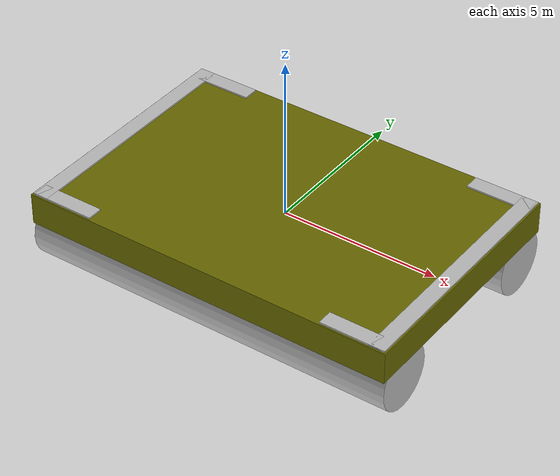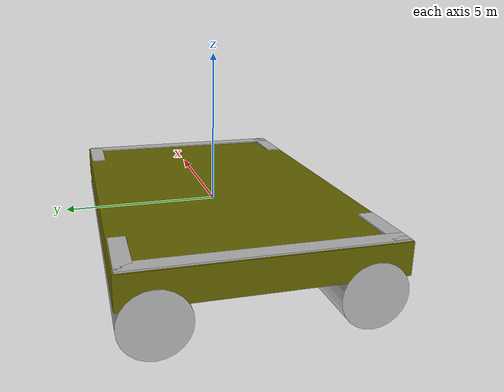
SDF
<?xml version='1.0'?>
<sdf version='1.4'>
  <model name="tug_boat">
    <pose>0 0 0 0 0 0</pose>
    <static>false</static>

    <!-- LINK -->
    <link name="body">
      <pose>0 0 0 0 0 0</pose>

      <collision name="body">
        <geometry>
          <box><size>12.0 8.0 1.0</size></box>
        </geometry>
      </collision>

      <visual name="body">
        <geometry>
          <box><size>12.0 8.0 1.0</size></box>
        </geometry>

        <material>
          <diffuse>0.4 0.4 0 1</diffuse>
        </material>
      </visual>

      <inertial>
        <mass> 1000 </mass>
      </inertial>
    </link>

    <link name="right_floater">
      <pose>0 -3 -1 0 1.57 0</pose>
      <collision name="right_floater">
        <geometry>
          <cylinder>
            <radius>1.0</radius>
            <length>12.0</length>
          </cylinder>
        </geometry>
      </collision>

      <visual name="right_floater">
        <geometry>
          <cylinder>
            <radius>1.0</radius>
            <length>12.0</length>
          </cylinder>
        </geometry>
      </visual>

      <inertial>
        <mass> 30 </mass>
      </inertial>

    </link>

    <link name="left_floater">
      <pose>0 3 -1 0 1.57 0</pose>
      <collision name="left_floater">
        <geometry>
          <cylinder>
            <radius>1.0</radius>
            <length>12.0</length>
          </cylinder>
        </geometry>
      </collision>

      <visual name="left_floater">
        <geometry>
          <cylinder>
            <radius>1.0</radius>
            <length>12.0</length>
          </cylinder>
        </geometry>
      </visual>
      <inertial>
        <mass> 30 </mass>
      </inertial>
    </link>

    <link name="left_line_1">
      <pose>4.9 -3.7 0.5 0 0 0</pose>

      <collision name="left_line_1">
        <geometry>
          <box><size>2 0.5 0.1</size></box>
        </geometry>
      </collision>

      <visual name="left_line_1">
        <geometry>
          <box><size>2 0.5 0.1</size></box>
        </geometry>
      </visual>
    </link>

    <link name="left_line_2">
      <pose>-4.9 -3.7 0.5 0 0 0</pose>

      <collision name="left_line_2">
        <geometry>
          <box><size>2 0.5 0.1</size></box>
        </geometry>
      </collision>

      <visual name="left_line_2">
        <geometry>
          <box><size>2 0.5 0.1</size></box>
        </geometry>
      </visual>
    </link>

    <link name="right_line_1">
      <pose>4.9 3.7 0.5 0 0 0</pose>

      <collision name="right_line_1">
        <geometry>
          <box><size>2 0.5 0.1</size></box>
        </geometry>
      </collision>

      <visual name="right_line_1">
        <geometry>
          <box><size>2 0.5 0.1</size></box>
        </geometry>
      </visual>
    </link>

    <link name="right_line_2">
      <pose>-4.9 3.7 0.5 0 0 0</pose>

      <collision name="right_line_2">
        <geometry>
          <box><size>2 0.5 0.1</size></box>
        </geometry>
      </collision>

      <visual name="right_line_2">
        <geometry>
          <box><size>2 0.5 0.1</size></box>
        </geometry>
      </visual>
    </link>

    <link name="front_line">
      <pose>5.7 0 0.5 0 0 0</pose>

      <collision name="front_line">
        <geometry>
          <box><size>0.5 7.9 0.1</size></box>
        </geometry>
      </collision>

      <visual name="front_line">
        <geometry>
          <box><size>0.5 7.9 0.1</size></box>
        </geometry>
      </visual>
    </link>

    <link name="back_line">
      <pose>-5.7 0 0.5 0 0 0</pose>

      <collision name="back_line">
        <geometry>
          <box><size>0.5 7.9 0.1</size></box>
        </geometry>
      </collision>

      <visual name="back_line">
        <geometry>
          <box><size>0.5 7.9 0.1</size></box>
        </geometry>
      </visual>
    </link>

    <!-- JOINT -->
    <joint name="body2right_floater" type="fixed">
      <pose>0 0 0 0 0 0</pose>
      <parent>body</parent>
      <child>right_floater</child>
    </joint>

    <joint name="body2left_floater" type="fixed">
      <pose>0 0 0 0 0 0</pose>
      <parent>body</parent>
      <child>left_floater</child>
    </joint>

    <joint name="body2left_line_1" type="fixed">
      <pose>0 0 0 0 0 0</pose>
      <parent>body</parent>
      <child>left_line_1</child>
    </joint>

    <joint name="body2left_line_2" type="fixed">
      <pose>0 0 0 0 0 0</pose>
      <parent>body</parent>
      <child>left_line_2</child>
    </joint>

    <joint name="body2right_line_1" type="fixed">
      <pose>0 0 0 0 0 0</pose>
      <parent>body</parent>
      <child>right_line_1</child>
    </joint>

    <joint name="body2right_line_2" type="fixed">
      <pose>0 0 0 0 0 0</pose>
      <parent>body</parent>
      <child>right_line_2</child>
    </joint>

    <joint name="body2front_line" type="fixed">
      <pose>0 0 0 0 0 0</pose>
      <parent>body</parent>
      <child>front_line</child>
    </joint>

    <joint name="body2back_line" type="fixed">
      <pose>0 0 0 0 0 0</pose>
      <parent>body</parent>
      <child>back_line</child>
    </joint>

    <!-- PLUGIN -->
    <plugin name="BuoyancyPlugin" filename="libbuoyancy_gazebo_plugin.so">
      <fluid_density>1000</fluid_density>
      <fluid_level>0.0</fluid_level>
      <fluid_drag>5.0</fluid_drag>
      <link>
        <name>body</name>
        <center_of_volume>5.5 0 1</center_of_volume>
        <area>0.63</area>
        <height>0.70</height>
      </link>
    </plugin>

    <plugin name="BuoyancyPlugin" filename="libbuoyancy_gazebo_plugin.so">
      <fluid_density>1000</fluid_density>
      <fluid_level>0.0</fluid_level>
      <fluid_drag>5.0</fluid_drag>
      <link>
        <name>body</name>
        <center_of_volume>-5.5 0 1</center_of_volume>
        <area>0.63</area>
        <height>0.70</height>
      </link>
    </plugin>

    <plugin name="BuoyancyPlugin" filename="libbuoyancy_gazebo_plugin.so">
      <fluid_density>1000</fluid_density>
      <fluid_level>0.0</fluid_level>
      <fluid_drag>5.0</fluid_drag>
      <link>
        <name>body</name>
        <center_of_volume>0 -3.5 1</center_of_volume>
        <area>0.63</area>
        <height>0.70</height>
      </link>
    </plugin>

    <plugin name="BuoyancyPlugin" filename="libbuoyancy_gazebo_plugin.so">
      <fluid_density>1000</fluid_density>
      <fluid_level>0.0</fluid_level>
      <fluid_drag>5.0</fluid_drag>
      <link>
        <name>body</name>
        <center_of_volume>0 3.5 1</center_of_volume>
        <area>0.63</area>
        <height>0.70</height>
      </link>
    </plugin>

    <plugin name="ThrusterPlugin" filename="libusv_gazebo_thrust_plugin.so">
      <bodyName>body</bodyName>
      <mappingType>1</mappingType> <!-- 0 is liner, 1 is nonliner -->
      <boatArea>96.0</boatArea>
    	<boatWidth>12.0</boatWidth>
    	<boatLength>8.0</boatLength>
    	<thrustOffsetZ>-0.05</thrustOffsetZ>
    	<!-- Thrust specification -->
    	<maxCmd>100.0</maxCmd>
    	<maxForceFwd>25.0</maxForceFwd>
    	<maxForceRev>-25.0</maxForceRev>
    	<cmdTimeout>0.1</cmdTimeout>
    </plugin>

  </model>
</sdf>
